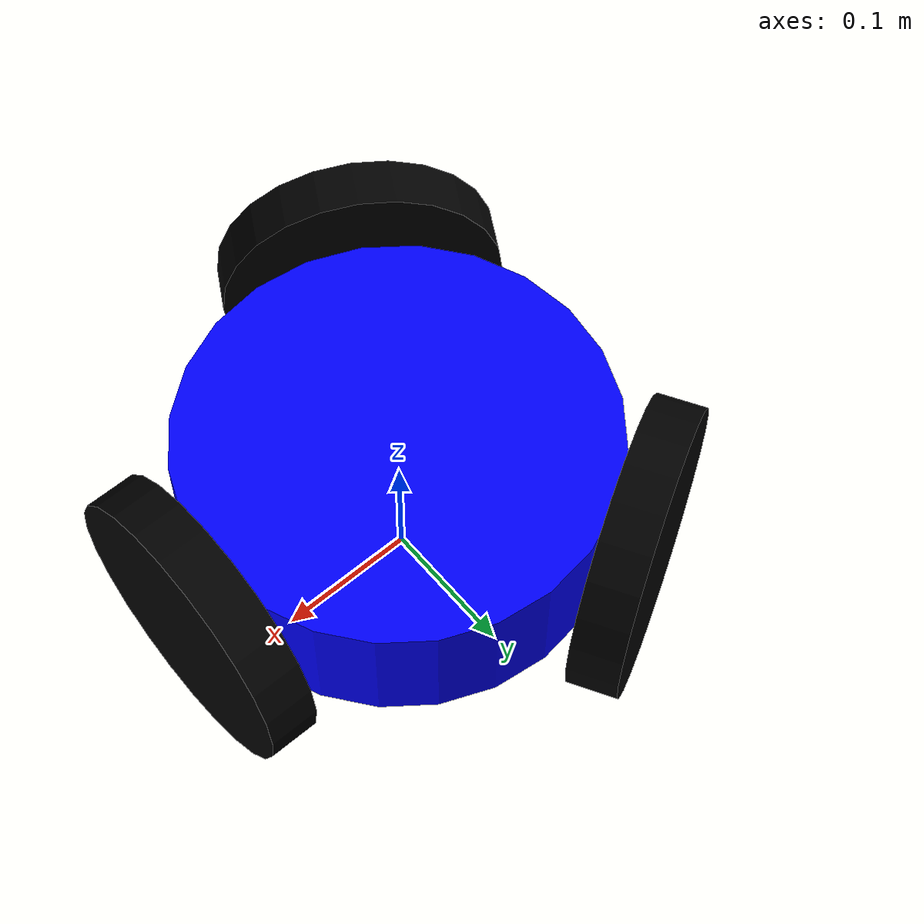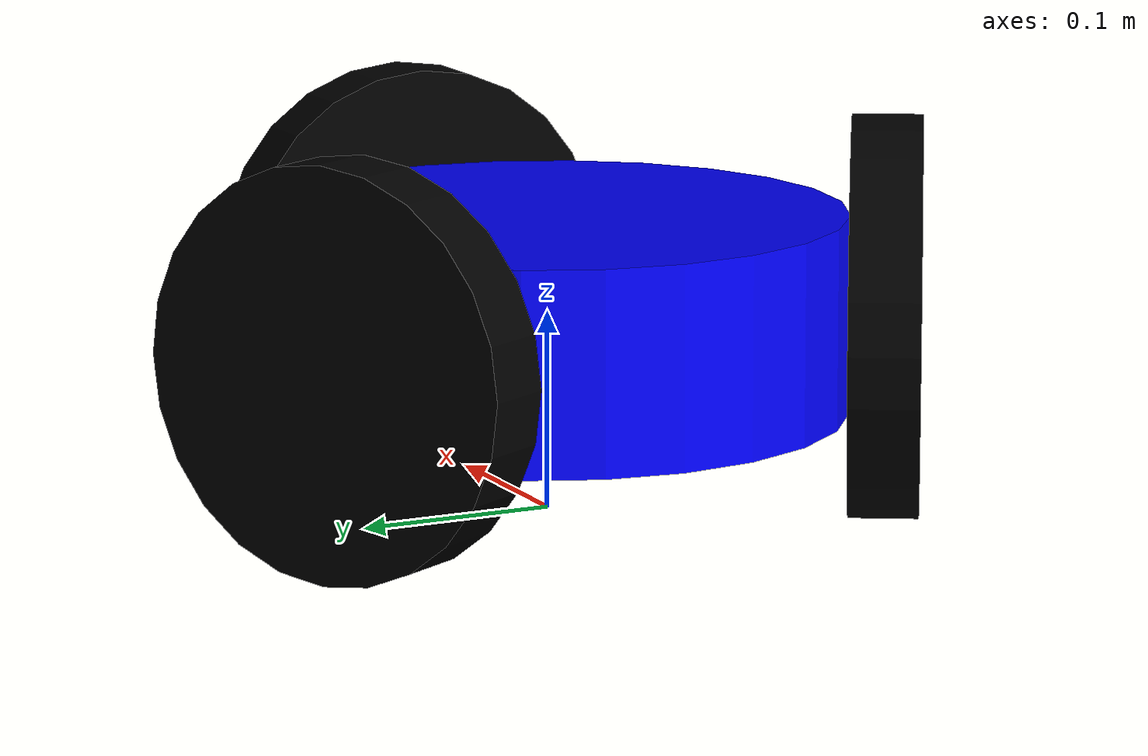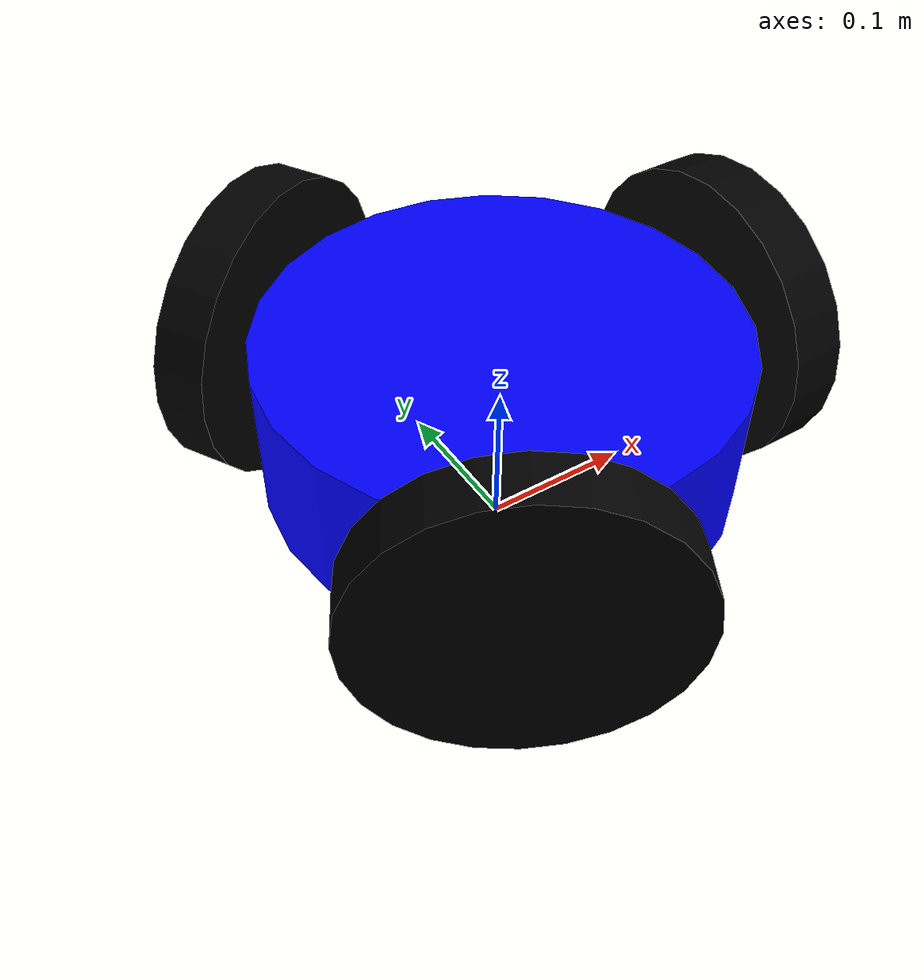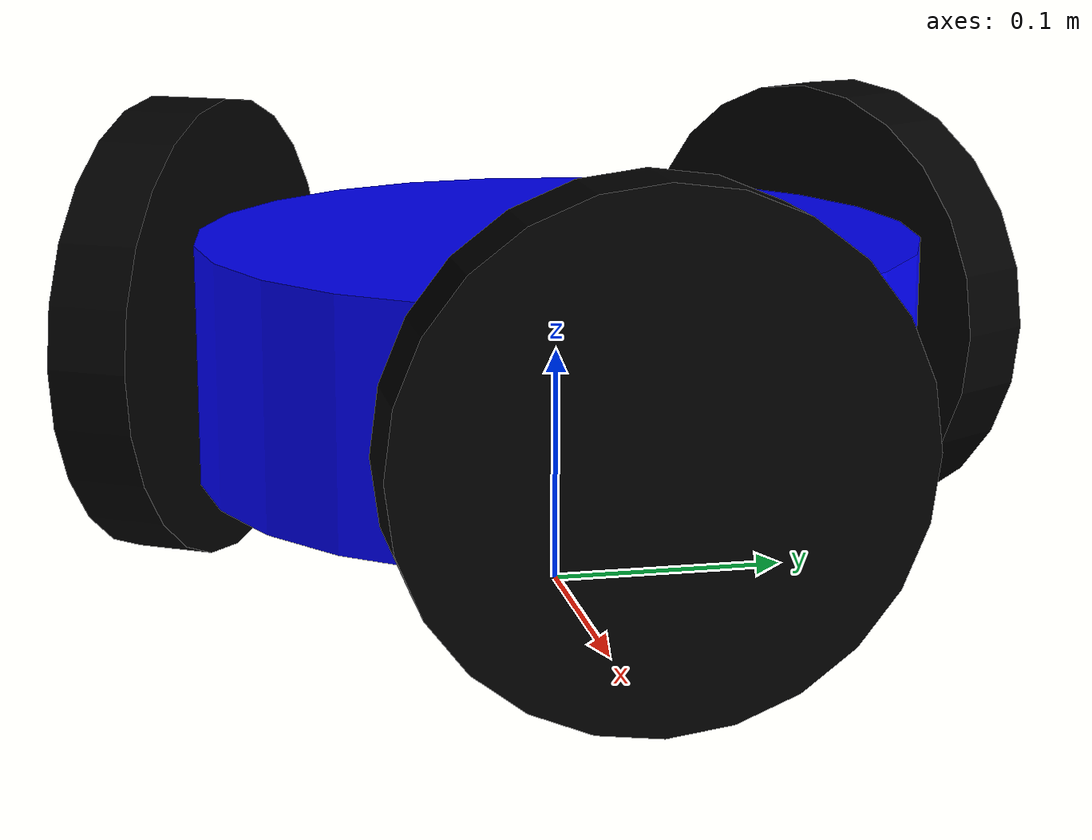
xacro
<?xml version="1.0"?>
<robot xmlns:xacro="http://www.ros.org/wiki/xacro" name="omni_mobile">
    <xacro:include filename="$(find lib_omni_mobile)/urdf/materials.xacro" />
	<xacro:property name="PI" value="3.14" />
    <xacro:property name="base_link_length" value="0.1" />
    <xacro:property name="base_link_radius" value="0.15" />
	<xacro:property name="wheel_length" value="0.035" />
	<xacro:property name="wheel_radius" value="0.1" />

    <link name="base_link">
		<visual>
			<geometry>
				<cylinder length="${base_link_length}" radius="${base_link_radius}"/>
			</geometry>
			<origin xyz="0 0 ${base_link_length/2+wheel_radius/2}"/>
			<material name="blue"/>
		</visual>
		<collision>
			<geometry>
				<cylinder length="${base_link_length}" radius="${base_link_radius}"/>
			</geometry>
			<origin xyz="0 0 ${base_link_length/2+wheel_radius/2}"/>
			<material name="blue"/>
		</collision>
	</link>

	<joint name="jwheel_1" type="revolute">
		<parent link="base_link"/>
		<child link="wheel_1"/>
		<origin xyz="${base_link_radius+wheel_length/2} 0 ${base_link_length}" rpy="0 ${PI/2} 0"/>
		<axis xyz="0 0 1"/>
		<limit effort="1000" lower="${-PI}" upper="${PI}" velocity="5"/>
	</joint>

	<link name="wheel_1">
		<visual>
			<geometry>
				<cylinder length="${wheel_length}" radius="${wheel_radius}"/>
			</geometry>
			<origin xyz="0 0 0"/>
			<material name="black"/>
		</visual>
		<collision>
			<geometry>
				<cylinder length="${wheel_length}" radius="${wheel_radius}"/>
			</geometry>
			<origin xyz="0 0 0"/>
			<material name="black"/>
		</collision>
	</link>

	<joint name="jwheel_2" type="revolute">
		<parent link="base_link"/>
		<child link="wheel_2"/>
		<origin xyz="${-0.5*(base_link_radius+wheel_length/2)} ${0.866*(base_link_radius+wheel_length/2)} ${base_link_length}" rpy="0 ${PI/2} ${2*PI/3}"/>
		<axis xyz="0 0 1"/>
		<limit effort="1000" lower="${-PI}" upper="${PI}" velocity="5"/>
	</joint>

	<link name="wheel_2">
		<visual>
			<geometry>
				<cylinder length="${wheel_length}" radius="${wheel_radius}"/>
			</geometry>
			<origin xyz="0 0 0"/>
			<material name="black"/>
		</visual>
		<collision>
			<geometry>
				<cylinder length="${wheel_length}" radius="${wheel_radius}"/>
			</geometry>
			<origin xyz="0 0 0"/>
			<material name="black"/>
		</collision>
	</link>

	<joint name="jwheel_3" type="revolute">
		<parent link="base_link"/>
		<child link="wheel_3"/>
		<origin xyz="${-0.5*(base_link_radius+wheel_length/2)} ${-0.866*(base_link_radius+wheel_length/2)} ${base_link_length}" rpy="0 ${PI/2} ${-2*PI/3}"/>
		<axis xyz="0 0 1"/>
		<limit effort="1000" lower="${-PI}" upper="${PI}" velocity="5"/>
	</joint>

	<link name="wheel_3">
		<visual>
			<geometry>
				<cylinder length="${wheel_length}" radius="${wheel_radius}"/>
			</geometry>
			<origin xyz="0 0 0"/>
			<material name="black"/>
		</visual>
		<collision>
			<geometry>
				<cylinder length="${wheel_length}" radius="${wheel_radius}"/>
			</geometry>
			<origin xyz="0 0 0"/>
			<material name="black"/>
		</collision>
	</link>
</robot>

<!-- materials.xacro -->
<robot>
    <material name="blue">
		<color rgba="0 0 1 1"/>
	</material>
	<material name="red">
		<color rgba="1 0 0 1"/>
	</material>
	<material name="green">
		<color rgba="0 1 0 1"/>
	</material>
	<material name="black">
		<color rgba="0 0 0 1"/>
	</material>
	<material name="white">
		<color rgba="1 1 1 1"/>
	</material>
</robot>
